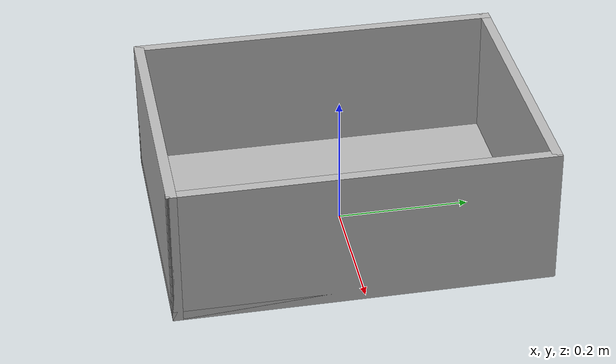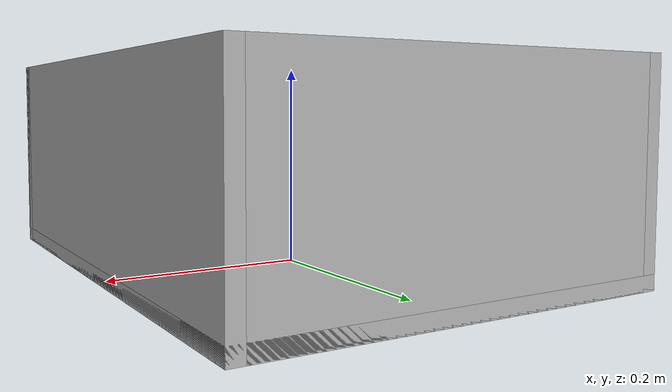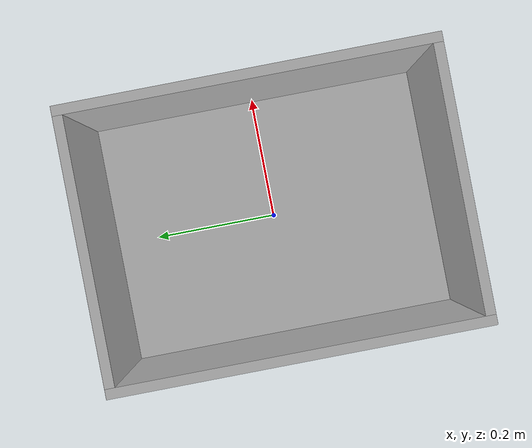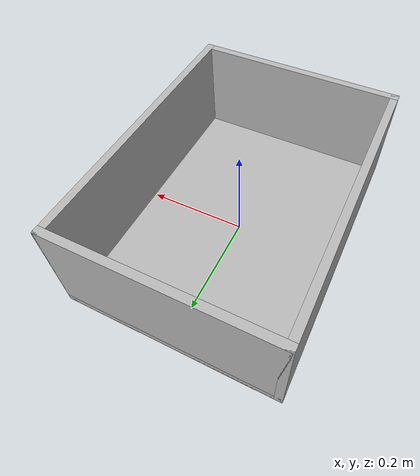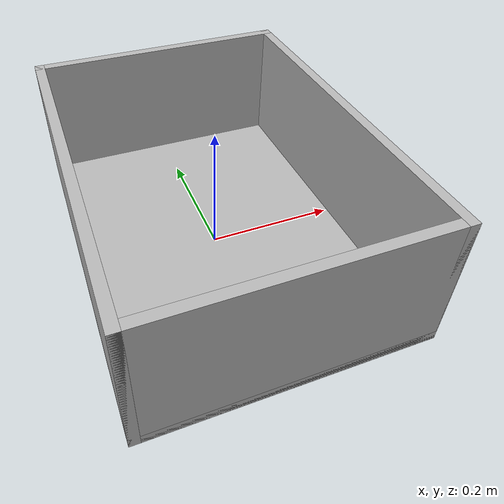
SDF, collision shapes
<?xml version="1.0"?>
<sdf version="1.7">
  <model name="bin_model">
    <!--
    Axes:
      +X - Pointing towards front
      +Y - Pointing to left side
      +Z - Up
    Origin:
      (0, 0, 0) at the center bottom of the bin
    -->
    <link name="bin_base">
      <inertial>
        <mass>18.70</mass>
        <inertia>
          <ixx>0.79</ixx>
          <ixy>0</ixy>
          <ixz>0</ixz>
          <iyy>0.53</iyy>
          <iyz>0</iyz>
          <izz>1.2</izz>
        </inertia>
      </inertial>
      <visual name="visual">
        <pose>0 0 0 0 0 1.570796</pose>
        <geometry>
        <mesh>
        <uri>package://drake_models/manipulation_station/bin.obj</uri>
        </mesh>
        </geometry>
      </visual>
      <collision name="front">
        <pose>0.2025 0 0.105 0 0 0</pose>
        <geometry>
          <box>
            <size>0.015 0.56 0.21</size>
          </box>
        </geometry>
      </collision>
      <collision name="back">
        <pose>-0.2025 0 0.105 0 0 0</pose>
        <geometry>
          <box>
            <size>0.015 0.56 0.21</size>
          </box>
        </geometry>
      </collision>
      <collision name="left">
        <pose>0 0.2725 0.105 0 0 0</pose>
        <geometry>
          <box>
            <size>0.42 0.015 0.21</size>
          </box>
        </geometry>
      </collision>
      <collision name="right">
        <pose>0 -0.2725 0.105 0 0 0</pose>
        <geometry>
          <box>
            <size>0.42 0.015 0.21</size>
          </box>
        </geometry>
      </collision>
      <collision name="bottom">
        <pose>0.0 0.0 0.0075 0 0 0</pose>
        <geometry>
          <box>
            <size>0.42 0.56 0.015</size>
          </box>
        </geometry>
      </collision>
    </link>
    <frame name="bin_front_top_center">
      <pose relative_to="bin_base">0.22 0 0.21 0 0 0</pose>
    </frame>
  </model>
</sdf>
